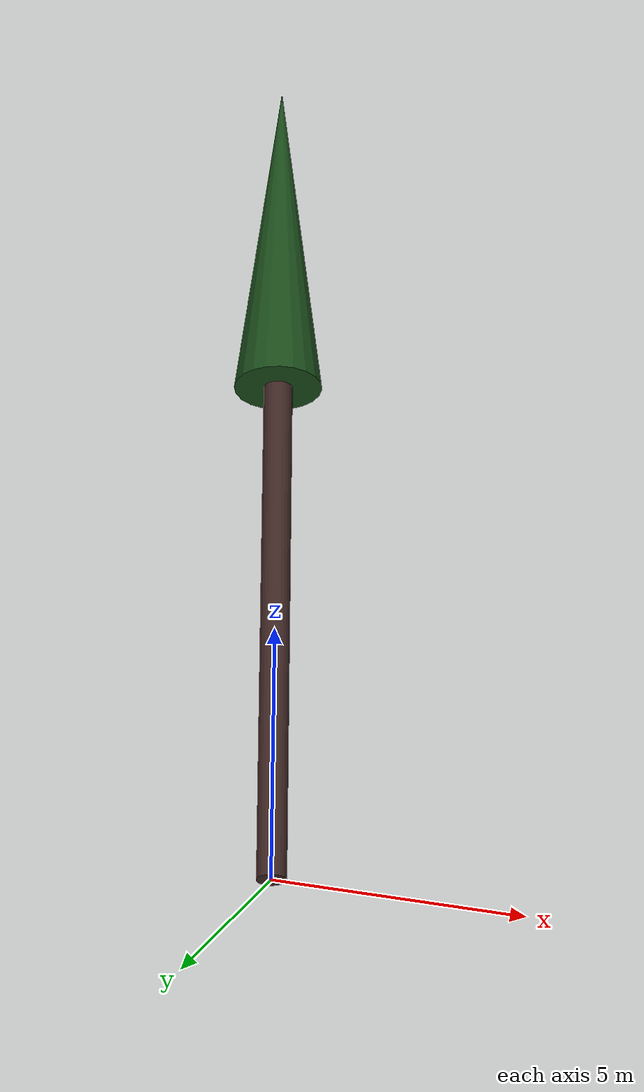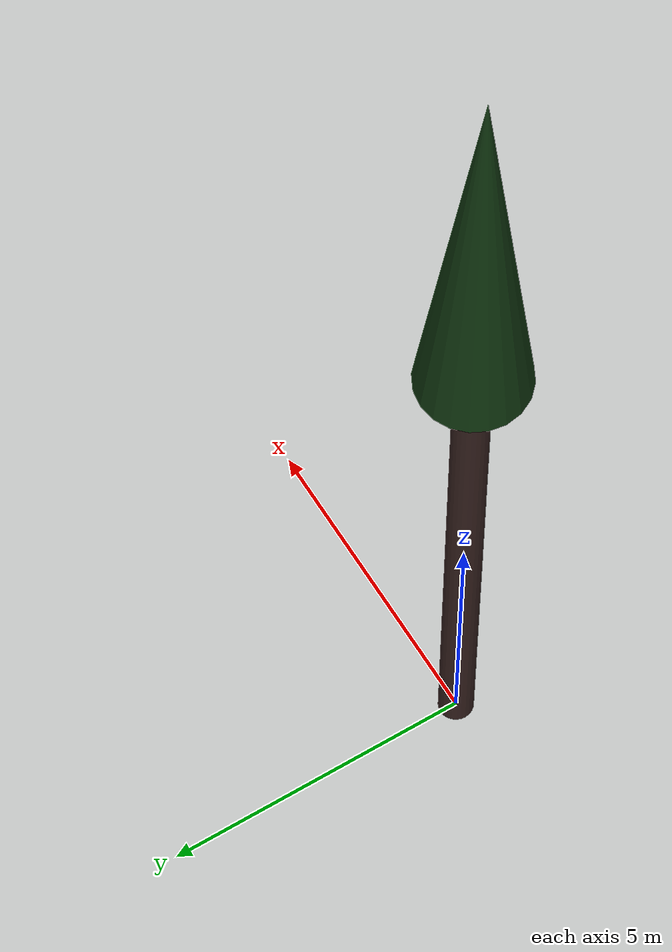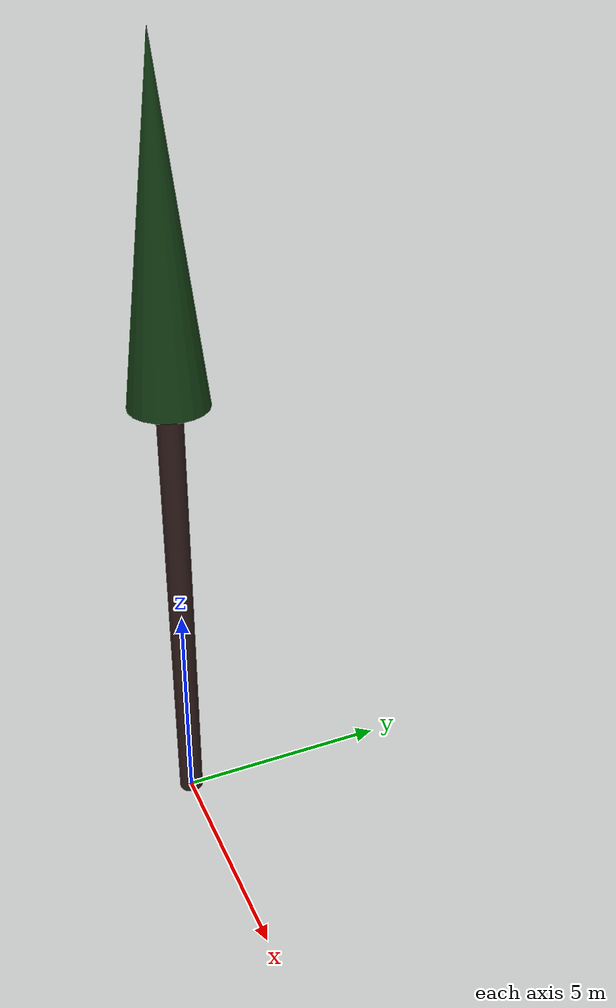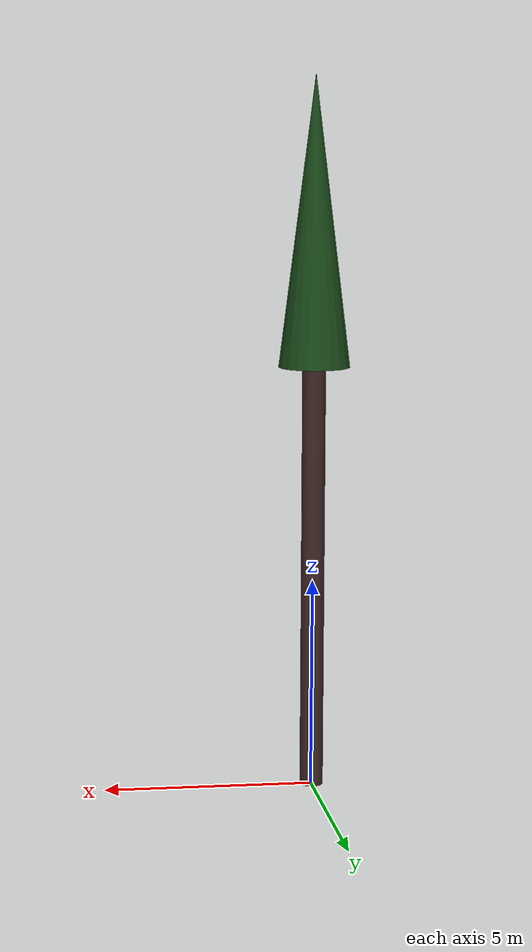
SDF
<?xml version="1.0" ?>
<sdf version="1.10">
  <model name="cypres_provence_10">
    <static>true</static>

    <!-- Tronc -->
    <link name="trunk">
      <pose>0 0 5.0693357853460785 0 0 0</pose>
      <visual name="trunk_visual">
        <geometry>
          <cylinder>
            <radius>0.27770621157380787</radius>
            <length>10.138671570692157</length>
          </cylinder>
        </geometry>
        <material>
          <ambient>0.24 0.15 0.14 1</ambient>
          <diffuse>0.24 0.15 0.14 1</diffuse>
          <specular>0.1 0.1 0.1 1</specular>
        </material>
      </visual>
      <collision name="trunk_collision">
        <geometry>
          <cylinder>
            <radius>0.27770621157380787</radius>
            <length>10.138671570692157</length>
          </cylinder>
        </geometry>
      </collision>
    </link>

    <!-- Feuillage -->
    <link name="crown">
      <pose>0 0 13.551960990099037 0 0 0</pose>
      <visual name="crown_visual">
        <geometry>
          <cone>
              <radius>0.8494892402486729</radius>
              <length>6.826578838813759</length>
            </cone>
        </geometry>
        <material>
          <ambient>0.10 0.29 0.10 1</ambient>
          <diffuse>0.10 0.29 0.10 1</diffuse>
          <specular>0.1 0.1 0.1 1</specular>
        </material>
      </visual>
      <collision name="crown_collision">
        <geometry>
          <sphere>
            <radius>0.6795913921989384</radius>
          </sphere>
        </geometry>
      </collision>
    </link>

    <!-- Joint tronc-feuillage -->
    <joint name="trunk_crown_joint" type="fixed">
      <parent>trunk</parent>
      <child>crown</child>
    </joint>

  </model>
</sdf>
